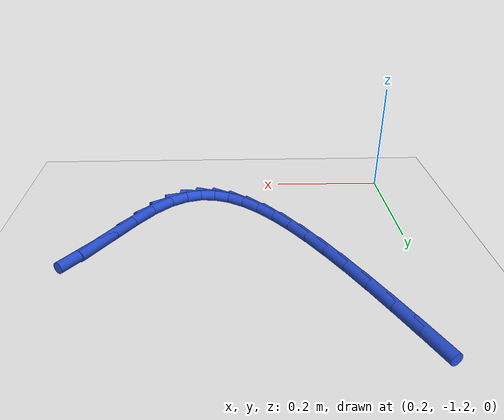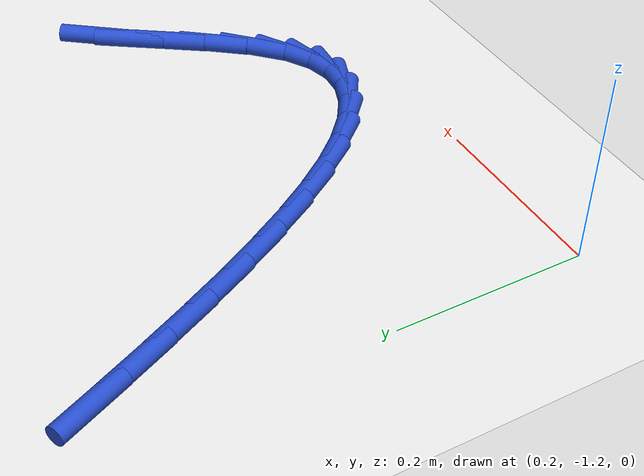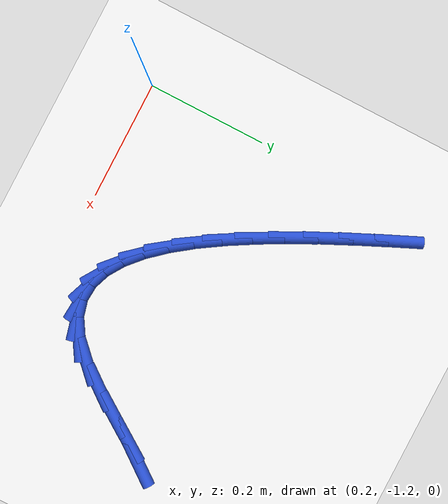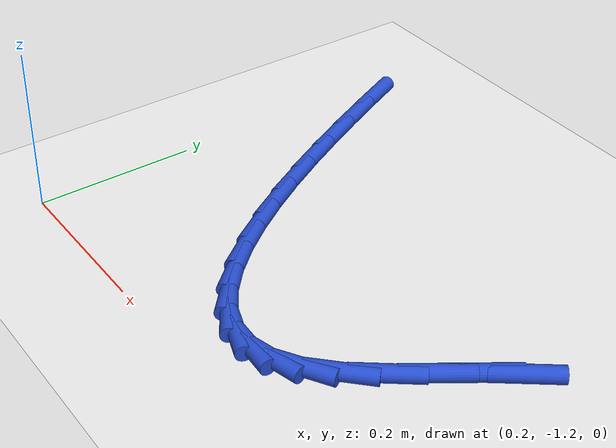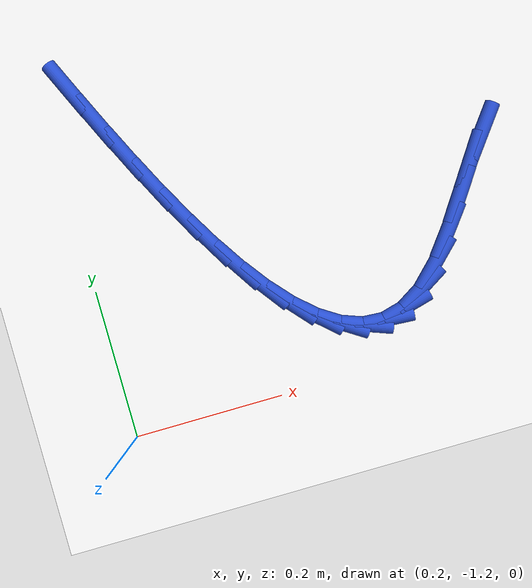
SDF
<sdf version="1.6">
 <world name="default">
  <model name="ground_plane">
   <static>1</static>
   <link name="link">
    <collision name="collision">
     <geometry><plane><normal>0 0 1</normal><size>100 100</size></plane></geometry>
     <surface><friction><ode><mu>100</mu><mu2>50</mu2></ode></friction></surface>
    </collision>
    <visual name="visual">
     <cast_shadows>0</cast_shadows>
     <geometry><plane><normal>0 0 1</normal><size>100 100</size></plane></geometry>
     <material>
      <script><uri>file://media/materials/scripts/gazebo.material</uri><name>Gazebo/WhiteGlow</name></script>
     </material>
    </visual>
   </link>
  </model>
  <model name="line">
   <link name="link_193">
    <pose>0.7498456989093089 -0.9365579468149753 0.01 0 1.57 0.9244863269006505</pose>
    <collision name="collision">
     <geometry><cylinder><radius>0.01</radius><length>0.08</length></cylinder></geometry>
    </collision>
    <visual name="visual">
     <material>
      <script><name>Gazebo/Blue</name><uri>file://media/materials/scripts/gazebo.material</uri></script>
     </material>
     <geometry><cylinder><radius>0.01</radius><length>0.08</length></cylinder></geometry>
    </visual>
   </link>
   <link name="link_194">
    <pose>0.7252099232038417 -0.9692141444369526 0.01 0 1.57 0.9800488569044477</pose>
    <collision name="collision">
     <geometry><cylinder><radius>0.01</radius><length>0.08</length></cylinder></geometry>
    </collision>
    <visual name="visual">
     <material>
      <script><name>Gazebo/Blue</name><uri>file://media/materials/scripts/gazebo.material</uri></script>
     </material>
     <geometry><cylinder><radius>0.01</radius><length>0.08</length></cylinder></geometry>
    </visual>
   </link>
   <link name="link_195">
    <pose>0.6988135323388174 -1.008574218367391 0.01 0 1.57 0.9757049129480572</pose>
    <collision name="collision">
     <geometry><cylinder><radius>0.01</radius><length>0.08</length></cylinder></geometry>
    </collision>
    <visual name="visual">
     <material>
      <script><name>Gazebo/Blue</name><uri>file://media/materials/scripts/gazebo.material</uri></script>
     </material>
     <geometry><cylinder><radius>0.01</radius><length>0.08</length></cylinder></geometry>
    </visual>
   </link>
   <link name="link_196">
    <pose>0.6711803335494516 -1.0493940731845504 0.01 0 1.57 0.9175255243541234</pose>
    <collision name="collision">
     <geometry><cylinder><radius>0.01</radius><length>0.08</length></cylinder></geometry>
    </collision>
    <visual name="visual">
     <material>
      <script><name>Gazebo/Blue</name><uri>file://media/materials/scripts/gazebo.material</uri></script>
     </material>
     <geometry><cylinder><radius>0.01</radius><length>0.08</length></cylinder></geometry>
    </visual>
   </link>
   <link name="link_197">
    <pose>0.642834134070959 -1.0864296134666913 0.01 0 1.57 0.7791154551012665</pose>
    <collision name="collision">
     <geometry><cylinder><radius>0.01</radius><length>0.08</length></cylinder></geometry>
    </collision>
    <visual name="visual">
     <material>
      <script><name>Gazebo/Blue</name><uri>file://media/materials/scripts/gazebo.material</uri></script>
     </material>
     <geometry><cylinder><radius>0.01</radius><length>0.08</length></cylinder></geometry>
    </visual>
   </link>
   <link name="link_198">
    <pose>0.6142838884242926 -1.114623348544113 0.01 0 1.57 0.549262275039006</pose>
    <collision name="collision">
     <geometry><cylinder><radius>0.01</radius><length>0.08</length></cylinder></geometry>
    </collision>
    <visual name="visual">
     <material>
      <script><name>Gazebo/Blue</name><uri>file://media/materials/scripts/gazebo.material</uri></script>
     </material>
     <geometry><cylinder><radius>0.01</radius><length>0.08</length></cylinder></geometry>
    </visual>
   </link>
   <link name="link_199">
    <pose>0.5857880181532767 -1.1320654039500988 0.01 0 1.57 0.2549444677117954</pose>
    <collision name="collision">
     <geometry><cylinder><radius>0.01</radius><length>0.08</length></cylinder></geometry>
    </collision>
    <visual name="visual">
     <material>
      <script><name>Gazebo/Blue</name><uri>file://media/materials/scripts/gazebo.material</uri></script>
     </material>
     <geometry><cylinder><radius>0.01</radius><length>0.08</length></cylinder></geometry>
    </visual>
   </link>
   <link name="link_200">
    <pose>0.5573965053922102 -1.1394646712993126 0.01 0 1.57 -0.06558168214096037</pose>
    <collision name="collision">
     <geometry><cylinder><radius>0.01</radius><length>0.08</length></cylinder></geometry>
    </collision>
    <visual name="visual">
     <material>
      <script><name>Gazebo/Blue</name><uri>file://media/materials/scripts/gazebo.material</uri></script>
     </material>
     <geometry><cylinder><radius>0.01</radius><length>0.08</length></cylinder></geometry>
    </visual>
   </link>
   <link name="link_201">
    <pose>0.529152987667751 -1.1376097538277665 0.01 0 1.57 -0.35253813934036127</pose>
    <collision name="collision">
     <geometry><cylinder><radius>0.01</radius><length>0.08</length></cylinder></geometry>
    </collision>
    <visual name="visual">
     <material>
      <script><name>Gazebo/Blue</name><uri>file://media/materials/scripts/gazebo.material</uri></script>
     </material>
     <geometry><cylinder><radius>0.01</radius><length>0.08</length></cylinder></geometry>
    </visual>
   </link>
   <link name="link_202">
    <pose>0.5011011025065593 -1.127289254771474 0.01 0 1.57 -0.5742665955194318</pose>
    <collision name="collision">
     <geometry><cylinder><radius>0.01</radius><length>0.08</length></cylinder></geometry>
    </collision>
    <visual name="visual">
     <material>
      <script><name>Gazebo/Blue</name><uri>file://media/materials/scripts/gazebo.material</uri></script>
     </material>
     <geometry><cylinder><radius>0.01</radius><length>0.08</length></cylinder></geometry>
    </visual>
   </link>
   <link name="link_203">
    <pose>0.47328448743529317 -1.1092917773664486 0.01 0 1.57 -0.7348560694167144</pose>
    <collision name="collision">
     <geometry><cylinder><radius>0.01</radius><length>0.08</length></cylinder></geometry>
    </collision>
    <visual name="visual">
     <material>
      <script><name>Gazebo/Blue</name><uri>file://media/materials/scripts/gazebo.material</uri></script>
     </material>
     <geometry><cylinder><radius>0.01</radius><length>0.08</length></cylinder></geometry>
    </visual>
   </link>
   <link name="link_204">
    <pose>0.4457467799806116 -1.0844059248487032 0.01 0 1.57 -0.8500914562908041</pose>
    <collision name="collision">
     <geometry><cylinder><radius>0.01</radius><length>0.08</length></cylinder></geometry>
    </collision>
    <visual name="visual">
     <material>
      <script><name>Gazebo/Blue</name><uri>file://media/materials/scripts/gazebo.material</uri></script>
     </material>
     <geometry><cylinder><radius>0.01</radius><length>0.08</length></cylinder></geometry>
    </visual>
   </link>
   <link name="link_205">
    <pose>0.41853161766917313 -1.0534203004542504 0.01 0 1.57 -0.9339155674853191</pose>
    <collision name="collision">
     <geometry><cylinder><radius>0.01</radius><length>0.08</length></cylinder></geometry>
    </collision>
    <visual name="visual">
     <material>
      <script><name>Gazebo/Blue</name><uri>file://media/materials/scripts/gazebo.material</uri></script>
     </material>
     <geometry><cylinder><radius>0.01</radius><length>0.08</length></cylinder></geometry>
    </visual>
   </link>
   <link name="link_206">
    <pose>0.39168263802763603 -1.0171235074191032 0.01 0 1.57 -0.9960317218885271</pose>
    <collision name="collision">
     <geometry><cylinder><radius>0.01</radius><length>0.08</length></cylinder></geometry>
    </collision>
    <visual name="visual">
     <material>
      <script><name>Gazebo/Blue</name><uri>file://media/materials/scripts/gazebo.material</uri></script>
     </material>
     <geometry><cylinder><radius>0.01</radius><length>0.08</length></cylinder></geometry>
    </visual>
   </link>
   <link name="link_207">
    <pose>0.36524347858266054 -0.9763041489792762 0.01 0 1.57 -1.0427844340017023</pose>
    <collision name="collision">
     <geometry><cylinder><radius>0.01</radius><length>0.08</length></cylinder></geometry>
    </collision>
    <visual name="visual">
     <material>
      <script><name>Gazebo/Blue</name><uri>file://media/materials/scripts/gazebo.material</uri></script>
     </material>
     <geometry><cylinder><radius>0.01</radius><length>0.08</length></cylinder></geometry>
    </visual>
   </link>
   <link name="link_208">
    <pose>0.3392577768609046 -0.9317508283707813 0.01 0 1.57 -1.0782858756665816</pose>
    <collision name="collision">
     <geometry><cylinder><radius>0.01</radius><length>0.08</length></cylinder></geometry>
    </collision>
    <visual name="visual">
     <material>
      <script><name>Gazebo/Blue</name><uri>file://media/materials/scripts/gazebo.material</uri></script>
     </material>
     <geometry><cylinder><radius>0.01</radius><length>0.08</length></cylinder></geometry>
    </visual>
   </link>
   <link name="link_209">
    <pose>0.3137691703890272 -0.884252148829632 0.01 0 1.57 -1.105214754475158</pose>
    <collision name="collision">
     <geometry><cylinder><radius>0.01</radius><length>0.08</length></cylinder></geometry>
    </collision>
    <visual name="visual">
     <material>
      <script><name>Gazebo/Blue</name><uri>file://media/materials/scripts/gazebo.material</uri></script>
     </material>
     <geometry><cylinder><radius>0.01</radius><length>0.08</length></cylinder></geometry>
    </visual>
   </link>
   <link name="link_210">
    <pose>0.28882129669368634 -0.8345967135918398 0.01 0 1.57 -1.125314337301333</pose>
    <collision name="collision">
     <geometry><cylinder><radius>0.01</radius><length>0.08</length></cylinder></geometry>
    </collision>
    <visual name="visual">
     <material>
      <script><name>Gazebo/Blue</name><uri>file://media/materials/scripts/gazebo.material</uri></script>
     </material>
     <geometry><cylinder><radius>0.01</radius><length>0.08</length></cylinder></geometry>
    </visual>
   </link>
   <link name="link_211">
    <pose>0.2644577933015421 -0.7835731258934208 0.01 0 1.57 -1.139688734135578</pose>
    <collision name="collision">
     <geometry><cylinder><radius>0.01</radius><length>0.08</length></cylinder></geometry>
    </collision>
    <visual name="visual">
     <material>
      <script><name>Gazebo/Blue</name><uri>file://media/materials/scripts/gazebo.material</uri></script>
     </material>
     <geometry><cylinder><radius>0.01</radius><length>0.08</length></cylinder></geometry>
    </visual>
   </link>
   <link name="link_212">
    <pose>0.2407222977392528 -0.7319699889703863 0.01 0 1.57 -1.1489701518108923</pose>
    <collision name="collision">
     <geometry><cylinder><radius>0.01</radius><length>0.08</length></cylinder></geometry>
    </collision>
    <visual name="visual">
     <material>
      <script><name>Gazebo/Blue</name><uri>file://media/materials/scripts/gazebo.material</uri></script>
     </material>
     <geometry><cylinder><radius>0.01</radius><length>0.08</length></cylinder></geometry>
    </visual>
   </link>
  </model>
 </world>
</sdf>
